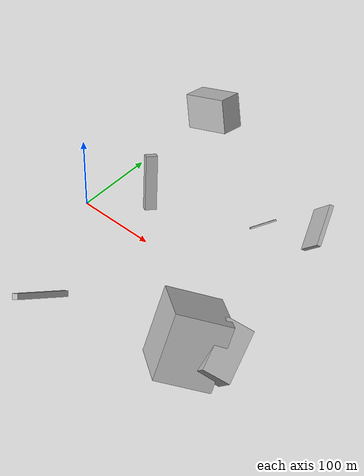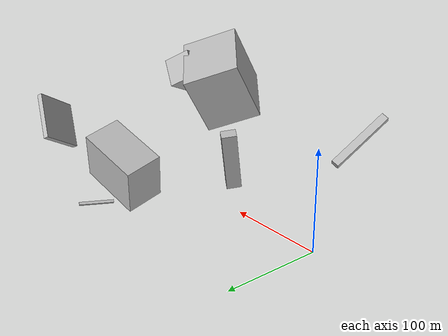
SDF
<sdf version="1.6">
 <world name="default">
  <scene>
   <sky><clouds><speed>12</speed></clouds></sky>
   <ambient>0.4 0.4 0.4 1</ambient>
   <background>0.7 0.7 0.7 1</background>
   <shadows>1</shadows>
  </scene>
  <gravity>0 0 -9.8066</gravity>
  <magnetic_field>6e-06 2.3e-05 -4.2e-05</magnetic_field>
  <physics default="0" name="default_physics" type="ode">
   <ode>
    <solver>
     <type>quick</type>
     <iters>10</iters>
     <sor>1.0</sor>
     <use_dynamic_moi_rescaling>0</use_dynamic_moi_rescaling>
    </solver>
    <constraints>
     <cfm>0</cfm>
     <erp>0.2</erp>
     <contact_max_correcting_vel>100</contact_max_correcting_vel>
     <contact_surface_layer>0.001</contact_surface_layer>
    </constraints>
   </ode>
   <max_step_size>0.004</max_step_size>
   <real_time_factor>1</real_time_factor>
   <real_time_update_rate>250</real_time_update_rate>
  </physics>
  <light name="sun" type="directional">
   <pose>0 0 10 0 0 0</pose>
   <diffuse>0.8 0.8 0.8 1</diffuse>
   <specular>0.2 0.2 0.2 1</specular>
   <attenuation>
    <range>1000</range>
    <constant>0.9</constant>
    <linear>0.01</linear>
    <quadratic>0.001</quadratic>
   </attenuation>
   <direction>-0.5 0.1 -0.9</direction>
  </light>
  <model name="building_1">
   <static>0</static>
   <pose>75.66531432146853 162.0269377626613 96.41982958574678 1.3190623741480634 -0.30921757371594055 0.09384242362762402</pose>
   <link name="link">
    <gravity>0</gravity>
    <pose>0 0 15.5 0 0 0</pose>
    <collision name="collision"><geometry><box><size>55 42 31</size></box></geometry></collision>
    <visual name="visual">
     <cast_shadows>0</cast_shadows>
     <geometry><box><size>55 42 31</size></box></geometry>
     <material>
      <script>
       <uri>model://HANNAS_wall/materials/scripts</uri>
       <uri>model://HANNAS_wall/materials/textures</uri>
       <name>vrc/HANNAS_wall</name>
      </script>
     </material>
    </visual>
   </link>
  </model>
  <model name="building_2">
   <static>0</static>
   <pose>310.25598747366257 -111.5076703338741 55.65649466893831 0.5733665475566596 -0.42756871344892833 1.8235819497922938</pose>
   <link name="link">
    <gravity>0</gravity>
    <pose>0 0 17.0 0 0 0</pose>
    <collision name="collision"><geometry><box><size>64 34 34</size></box></geometry></collision>
    <visual name="visual">
     <cast_shadows>0</cast_shadows>
     <geometry><box><size>64 34 34</size></box></geometry>
     <material>
      <script>
       <uri>model://HANNAS_wall/materials/scripts</uri>
       <uri>model://HANNAS_wall/materials/textures</uri>
       <name>vrc/HANNAS_wall</name>
      </script>
     </material>
    </visual>
   </link>
  </model>
  <model name="building_3">
   <static>0</static>
   <pose>256.8598062341229 -147.54955851186097 79.05229752789411 1.958500260384035 0.3951630496021866 2.4764746857040736</pose>
   <link name="link">
    <gravity>0</gravity>
    <pose>0 0 33.5 0 0 0</pose>
    <collision name="collision"><geometry><box><size>75 80 67</size></box></geometry></collision>
    <visual name="visual">
     <cast_shadows>0</cast_shadows>
     <geometry><box><size>75 80 67</size></box></geometry>
     <material>
      <script>
       <uri>model://HANNAS_wall/materials/scripts</uri>
       <uri>model://HANNAS_wall/materials/textures</uri>
       <name>vrc/HANNAS_wall</name>
      </script>
     </material>
    </visual>
   </link>
  </model>
  <model name="building_4">
   <static>0</static>
   <pose>284.2770106760769 79.86262861119758 55.4883720550859 -0.7058457721977011 -0.8399422096867869 -0.3618737210300771</pose>
   <link name="link">
    <gravity>0</gravity>
    <pose>0 0 25.0 0 0 0</pose>
    <collision name="collision"><geometry><box><size>48 5 50</size></box></geometry></collision>
    <visual name="visual">
     <cast_shadows>0</cast_shadows>
     <geometry><box><size>48 5 50</size></box></geometry>
     <material>
      <script>
       <uri>model://HANNAS_wall/materials/scripts</uri>
       <uri>model://HANNAS_wall/materials/textures</uri>
       <name>vrc/HANNAS_wall</name>
      </script>
     </material>
    </visual>
   </link>
  </model>
  <model name="building_5">
   <static>0</static>
   <pose>90.73270231567905 16.397951722792826 38.42755774109104 0.37807616742429473 -0.1306105761857328 -2.16837496779088</pose>
   <link name="link">
    <gravity>0</gravity>
    <pose>0 0 33.5 0 0 0</pose>
    <collision name="collision"><geometry><box><size>14 9 67</size></box></geometry></collision>
    <visual name="visual">
     <cast_shadows>0</cast_shadows>
     <geometry><box><size>14 9 67</size></box></geometry>
     <material>
      <script>
       <uri>model://HANNAS_wall/materials/scripts</uri>
       <uri>model://HANNAS_wall/materials/textures</uri>
       <name>vrc/HANNAS_wall</name>
      </script>
     </material>
    </visual>
   </link>
  </model>
  <model name="building_6">
   <static>0</static>
   <pose>88.53130917793882 -168.2838501666043 33.45046727230215 0.8559869929924017 -0.8075511978520724 2.306286270074168</pose>
   <link name="link">
    <gravity>0</gravity>
    <pose>0 0 4.5 0 0 0</pose>
    <collision name="collision"><geometry><box><size>7 80 9</size></box></geometry></collision>
    <visual name="visual">
     <cast_shadows>0</cast_shadows>
     <geometry><box><size>7 80 9</size></box></geometry>
     <material>
      <script>
       <uri>model://HANNAS_wall/materials/scripts</uri>
       <uri>model://HANNAS_wall/materials/textures</uri>
       <name>vrc/HANNAS_wall</name>
      </script>
     </material>
    </visual>
   </link>
  </model>
  <model name="building_7">
   <static>0</static>
   <pose>197.19269546891934 124.36823874275252 10.24845705474615 1.6055255130195516 -0.6659978907114344 -0.4650914154909765</pose>
   <link name="link">
    <gravity>0</gravity>
    <pose>0 0 17.0 0 0 0</pose>
    <collision name="collision"><geometry><box><size>3 2 34</size></box></geometry></collision>
    <visual name="visual">
     <cast_shadows>0</cast_shadows>
     <geometry><box><size>3 2 34</size></box></geometry>
     <material>
      <script>
       <uri>model://HANNAS_wall/materials/scripts</uri>
       <uri>model://HANNAS_wall/materials/textures</uri>
       <name>vrc/HANNAS_wall</name>
      </script>
     </material>
    </visual>
   </link>
  </model>
 </world>
</sdf>
